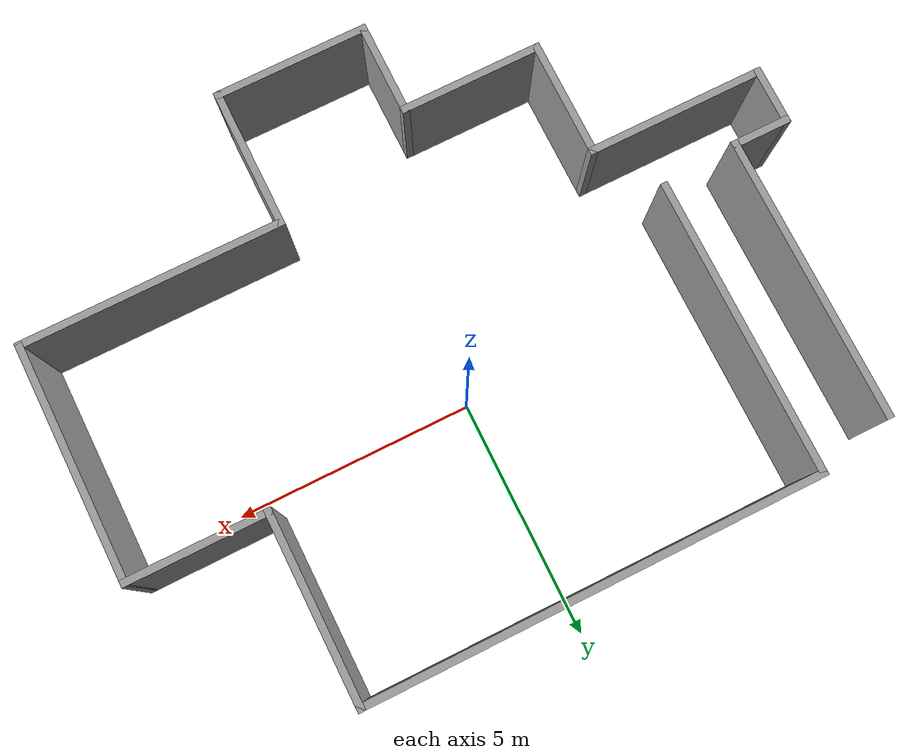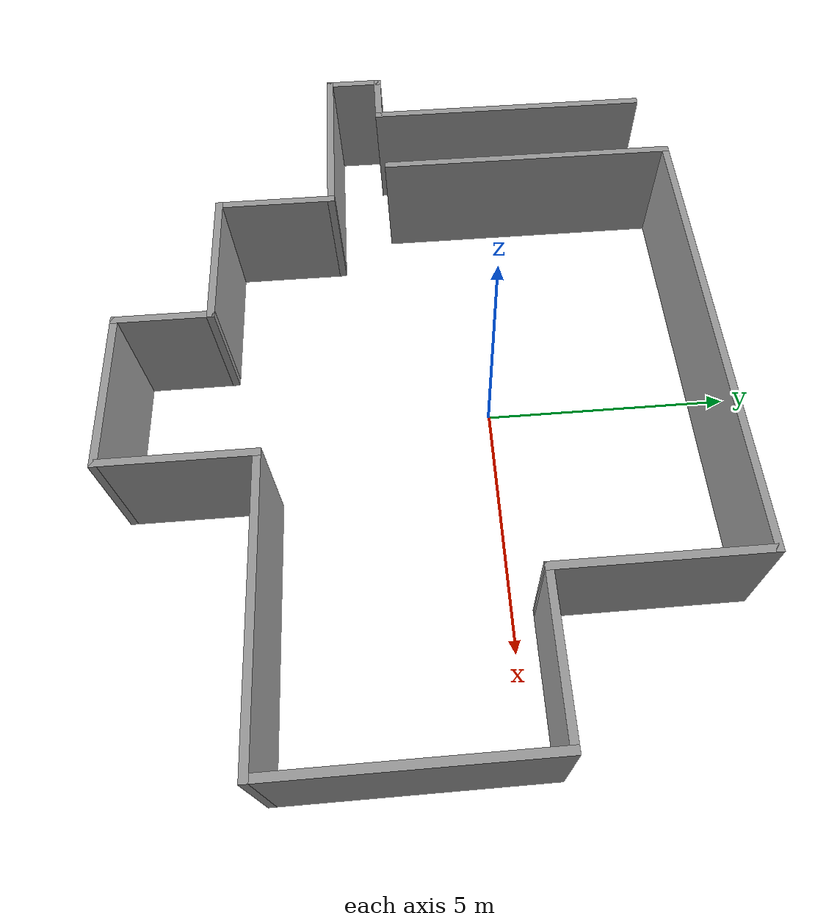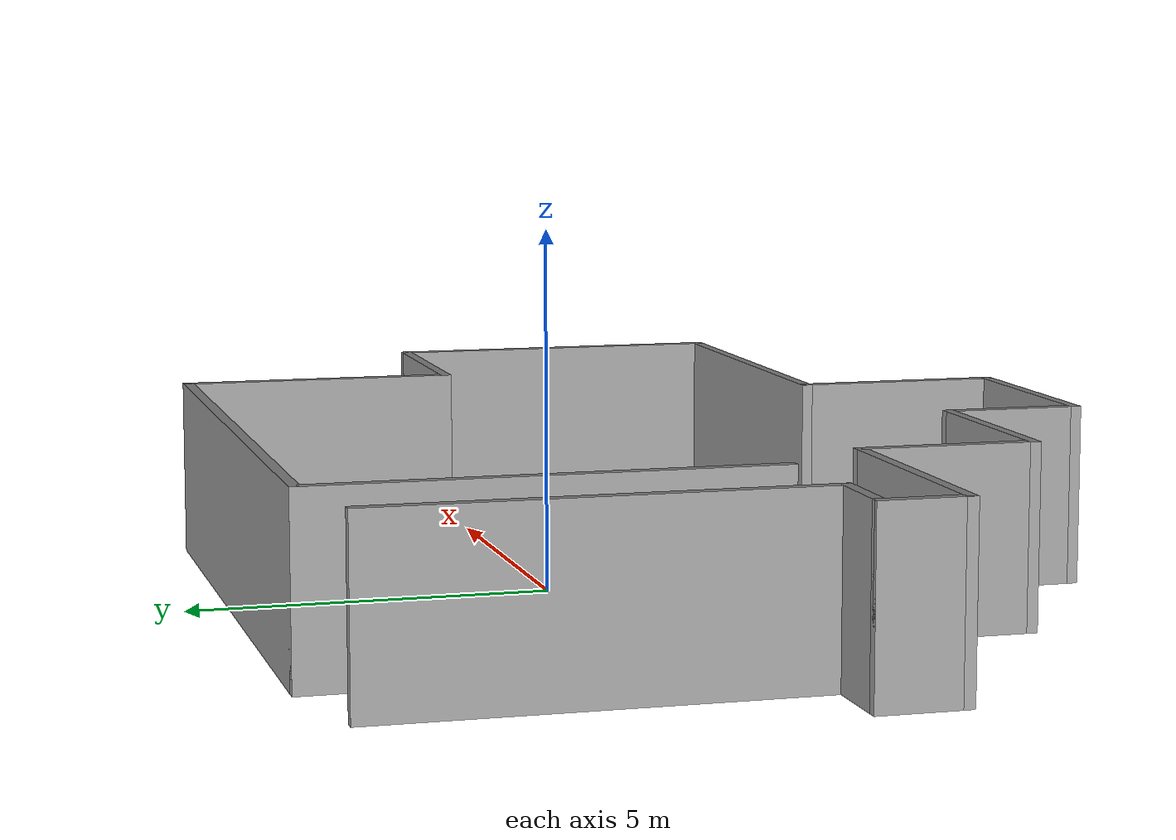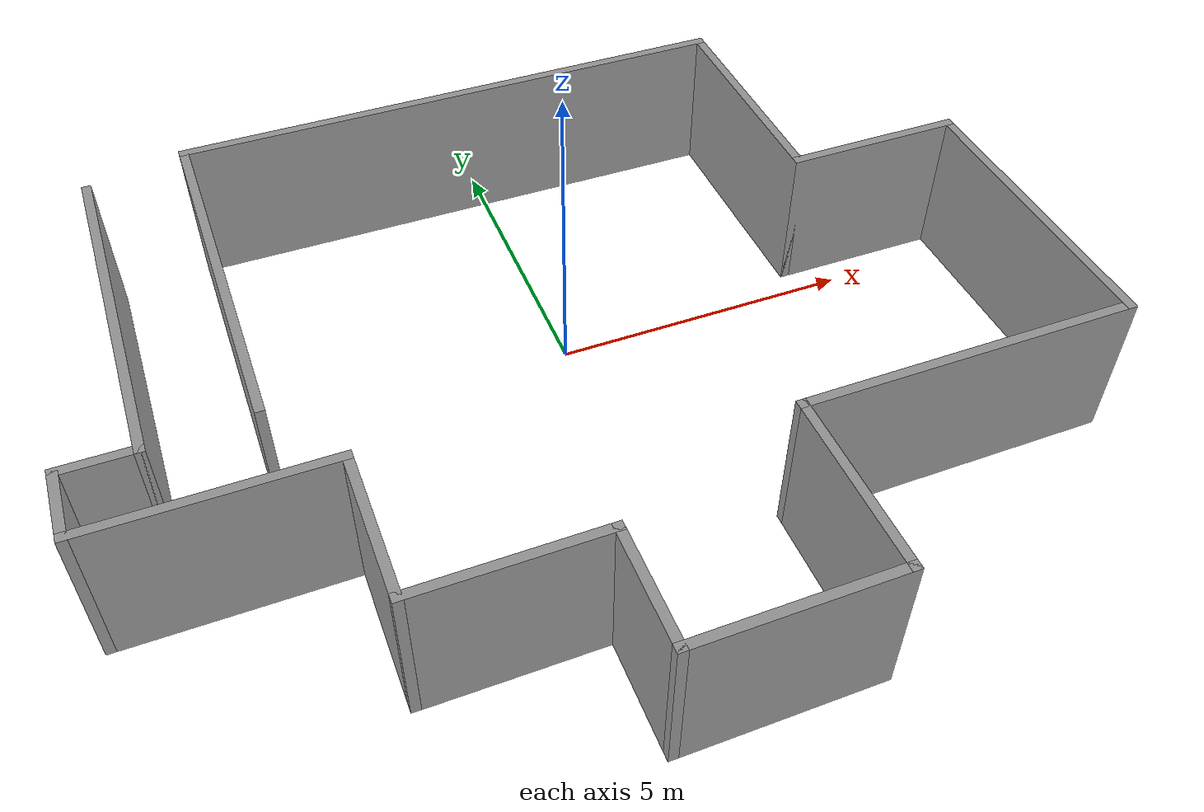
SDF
<?xml version='1.0'?>
<sdf version='1.7'>
  <model name='TestBed'>
    <pose>-0.32139 -1.44159 0 0 -0 0</pose>
    <link name='Wall_1'>
      <collision name='Wall_1_Collision'>
        <geometry>
          <box>
            <size>6.25 0.15 2.5</size>
          </box>
        </geometry>
        <pose>0 0 1.25 0 -0 0</pose>
      </collision>
      <visual name='Wall_1_Visual'>
        <pose>0 0 1.25 0 -0 0</pose>
        <geometry>
          <box>
            <size>6.25 0.15 2.5</size>
          </box>
        </geometry>
        <material>
          <script>
            <uri>file://media/materials/scripts/gazebo.material</uri>
            <name>Gazebo/Grey</name>
          </script>
          <ambient>1 1 1 1</ambient>
        </material>
        <meta>
          <layer>0</layer>
        </meta>
      </visual>
      <pose>-4.75 2.725 0 0 -0 1.5708</pose>
    </link>
    <link name='Wall_10'>
      <collision name='Wall_10_Collision'>
        <geometry>
          <box>
            <size>3 0.15 2.5</size>
          </box>
        </geometry>
        <pose>0 0 1.25 0 -0 0</pose>
      </collision>
      <visual name='Wall_10_Visual'>
        <pose>0 0 1.25 0 -0 0</pose>
        <geometry>
          <box>
            <size>3 0.15 2.5</size>
          </box>
        </geometry>
        <material>
          <script>
            <uri>file://media/materials/scripts/gazebo.material</uri>
            <name>Gazebo/Grey</name>
          </script>
          <ambient>1 1 1 1</ambient>
        </material>
        <meta>
          <layer>0</layer>
        </meta>
      </visual>
      <pose>-2.425 -3.925 0 0 -0 3.14159</pose>
    </link>
    <link name='Wall_11'>
      <collision name='Wall_11_Collision'>
        <geometry>
          <box>
            <size>2.5 0.15 2.5</size>
          </box>
        </geometry>
        <pose>0 0 1.25 0 -0 0</pose>
      </collision>
      <visual name='Wall_11_Visual'>
        <pose>0 0 1.25 0 -0 0</pose>
        <geometry>
          <box>
            <size>2.5 0.15 2.5</size>
          </box>
        </geometry>
        <material>
          <script>
            <uri>file://media/materials/scripts/gazebo.material</uri>
            <name>Gazebo/Grey</name>
          </script>
          <ambient>1 1 1 1</ambient>
        </material>
        <meta>
          <layer>0</layer>
        </meta>
      </visual>
      <pose>-3.85 -2.75 0 0 -0 1.5708</pose>
    </link>
    <link name='Wall_12'>
      <collision name='Wall_12_Collision'>
        <geometry>
          <box>
            <size>3.75 0.15 2.5</size>
          </box>
        </geometry>
        <pose>0 0 1.25 0 -0 0</pose>
      </collision>
      <visual name='Wall_12_Visual'>
        <pose>0 0 1.25 0 -0 0</pose>
        <geometry>
          <box>
            <size>3.75 0.15 2.5</size>
          </box>
        </geometry>
        <material>
          <script>
            <uri>file://media/materials/scripts/gazebo.material</uri>
            <name>Gazebo/Grey</name>
          </script>
          <ambient>1 1 1 1</ambient>
        </material>
        <meta>
          <layer>0</layer>
        </meta>
      </visual>
      <pose>-5.65 -1.575 0 0 -0 3.14159</pose>
    </link>
    <link name='Wall_13'>
      <collision name='Wall_13_Collision'>
        <geometry>
          <box>
            <size>1.25 0.15 2.5</size>
          </box>
        </geometry>
        <pose>0 0 1.25 0 -0 0</pose>
      </collision>
      <visual name='Wall_13_Visual'>
        <pose>0 0 1.25 0 -0 0</pose>
        <geometry>
          <box>
            <size>1.25 0.15 2.5</size>
          </box>
        </geometry>
        <material>
          <script>
            <uri>file://media/materials/scripts/gazebo.material</uri>
            <name>Gazebo/Grey</name>
          </script>
          <ambient>1 1 1 1</ambient>
        </material>
        <meta>
          <layer>0</layer>
        </meta>
      </visual>
      <pose>-7.45 -1.025 0 0 -0 1.5708</pose>
    </link>
    <link name='Wall_14'>
      <collision name='Wall_14_Collision'>
        <geometry>
          <box>
            <size>1.25 0.15 2.5</size>
          </box>
        </geometry>
        <pose>0 0 1.25 0 -0 0</pose>
      </collision>
      <visual name='Wall_14_Visual'>
        <pose>0 0 1.25 0 -0 0</pose>
        <geometry>
          <box>
            <size>1.25 0.15 2.5</size>
          </box>
        </geometry>
        <material>
          <script>
            <uri>file://media/materials/scripts/gazebo.material</uri>
            <name>Gazebo/Grey</name>
          </script>
          <ambient>1 1 1 1</ambient>
        </material>
        <meta>
          <layer>0</layer>
        </meta>
      </visual>
      <pose>-6.9 -0.475 0 0 -0 0</pose>
    </link>
    <link name='Wall_15'>
      <collision name='Wall_15_Collision'>
        <geometry>
          <box>
            <size>6 0.15 2.5</size>
          </box>
        </geometry>
        <pose>0 0 1.25 0 -0 0</pose>
      </collision>
      <visual name='Wall_15_Visual'>
        <pose>0 0 1.25 0 -0 0</pose>
        <geometry>
          <box>
            <size>6 0.15 2.5</size>
          </box>
        </geometry>
        <material>
          <script>
            <uri>file://media/materials/scripts/gazebo.material</uri>
            <name>Gazebo/Grey</name>
          </script>
          <ambient>1 1 1 1</ambient>
        </material>
        <meta>
          <layer>0</layer>
        </meta>
      </visual>
      <pose>-6.35 2.45 0 0 -0 1.5708</pose>
    </link>
    <link name='Wall_2'>
      <collision name='Wall_2_Collision'>
        <geometry>
          <box>
            <size>9.5 0.15 2.5</size>
          </box>
        </geometry>
        <pose>0 0 1.25 0 -0 0</pose>
      </collision>
      <visual name='Wall_2_Visual'>
        <pose>0 0 1.25 0 -0 0</pose>
        <geometry>
          <box>
            <size>9.5 0.15 2.5</size>
          </box>
        </geometry>
        <material>
          <script>
            <uri>file://media/materials/scripts/gazebo.material</uri>
            <name>Gazebo/Grey</name>
          </script>
          <ambient>1 1 1 1</ambient>
        </material>
        <meta>
          <layer>0</layer>
        </meta>
      </visual>
      <pose>-0.075 5.775 0 0 -0 0</pose>
    </link>
    <link name='Wall_3'>
      <collision name='Wall_3_Collision'>
        <geometry>
          <box>
            <size>4 0.15 2.5</size>
          </box>
        </geometry>
        <pose>0 0 1.25 0 -0 0</pose>
      </collision>
      <visual name='Wall_3_Visual'>
        <pose>0 0 1.25 0 -0 0</pose>
        <geometry>
          <box>
            <size>4 0.15 2.5</size>
          </box>
        </geometry>
        <material>
          <script>
            <uri>file://media/materials/scripts/gazebo.material</uri>
            <name>Gazebo/Grey</name>
          </script>
          <ambient>1 1 1 1</ambient>
        </material>
        <meta>
          <layer>0</layer>
        </meta>
      </visual>
      <pose>4.6 3.85 0 0 -0 -1.5708</pose>
    </link>
    <link name='Wall_4'>
      <collision name='Wall_4_Collision'>
        <geometry>
          <box>
            <size>3 0.15 2.5</size>
          </box>
        </geometry>
        <pose>0 0 1.25 0 -0 0</pose>
      </collision>
      <visual name='Wall_4_Visual'>
        <pose>0 0 1.25 0 -0 0</pose>
        <geometry>
          <box>
            <size>3 0.15 2.5</size>
          </box>
        </geometry>
        <material>
          <script>
            <uri>file://media/materials/scripts/gazebo.material</uri>
            <name>Gazebo/Grey</name>
          </script>
          <ambient>1 1 1 1</ambient>
        </material>
        <meta>
          <layer>0</layer>
        </meta>
      </visual>
      <pose>6.025 1.925 0 0 -0 0</pose>
    </link>
    <link name='Wall_5'>
      <collision name='Wall_5_Collision'>
        <geometry>
          <box>
            <size>5 0.15 2.5</size>
          </box>
        </geometry>
        <pose>0 0 1.25 0 -0 0</pose>
      </collision>
      <visual name='Wall_5_Visual'>
        <pose>0 0 1.25 0 -0 0</pose>
        <geometry>
          <box>
            <size>5 0.15 2.5</size>
          </box>
        </geometry>
        <material>
          <script>
            <uri>file://media/materials/scripts/gazebo.material</uri>
            <name>Gazebo/Grey</name>
          </script>
          <ambient>1 1 1 1</ambient>
        </material>
        <meta>
          <layer>0</layer>
        </meta>
      </visual>
      <pose>7.45 -0.5 0 0 -0 -1.5708</pose>
    </link>
    <link name='Wall_6'>
      <collision name='Wall_6_Collision'>
        <geometry>
          <box>
            <size>5.5 0.15 2.5</size>
          </box>
        </geometry>
        <pose>0 0 1.25 0 -0 0</pose>
      </collision>
      <visual name='Wall_6_Visual'>
        <pose>0 0 1.25 0 -0 0</pose>
        <geometry>
          <box>
            <size>5.5 0.15 2.5</size>
          </box>
        </geometry>
        <material>
          <script>
            <uri>file://media/materials/scripts/gazebo.material</uri>
            <name>Gazebo/Grey</name>
          </script>
          <ambient>1 1 1 1</ambient>
        </material>
        <meta>
          <layer>0</layer>
        </meta>
      </visual>
      <pose>4.775 -2.925 0 0 -0 3.14159</pose>
    </link>
    <link name='Wall_7'>
      <collision name='Wall_7_Collision'>
        <geometry>
          <box>
            <size>3 0.15 2.5</size>
          </box>
        </geometry>
        <pose>0 0 1.25 0 -0 0</pose>
      </collision>
      <visual name='Wall_7_Visual'>
        <pose>0 0 1.25 0 -0 0</pose>
        <geometry>
          <box>
            <size>3 0.15 2.5</size>
          </box>
        </geometry>
        <material>
          <script>
            <uri>file://media/materials/scripts/gazebo.material</uri>
            <name>Gazebo/Grey</name>
          </script>
          <ambient>1 1 1 1</ambient>
        </material>
        <meta>
          <layer>0</layer>
        </meta>
      </visual>
      <pose>2.1 -4.35 0 0 -0 -1.5708</pose>
    </link>
    <link name='Wall_8'>
      <collision name='Wall_8_Collision'>
        <geometry>
          <box>
            <size>3.25 0.15 2.5</size>
          </box>
        </geometry>
        <pose>0 0 1.25 0 -0 0</pose>
      </collision>
      <visual name='Wall_8_Visual'>
        <pose>0 0 1.25 0 -0 0</pose>
        <geometry>
          <box>
            <size>3.25 0.15 2.5</size>
          </box>
        </geometry>
        <material>
          <script>
            <uri>file://media/materials/scripts/gazebo.material</uri>
            <name>Gazebo/Grey</name>
          </script>
          <ambient>1 1 1 1</ambient>
        </material>
        <meta>
          <layer>0</layer>
        </meta>
      </visual>
      <pose>0.55 -5.775 0 0 -0 3.14159</pose>
    </link>
    <link name='Wall_9'>
      <collision name='Wall_9_Collision'>
        <geometry>
          <box>
            <size>2 0.15 2.5</size>
          </box>
        </geometry>
        <pose>0 0 1.25 0 -0 0</pose>
      </collision>
      <visual name='Wall_9_Visual'>
        <pose>0 0 1.25 0 -0 0</pose>
        <geometry>
          <box>
            <size>2 0.15 2.5</size>
          </box>
        </geometry>
        <material>
          <script>
            <uri>file://media/materials/scripts/gazebo.material</uri>
            <name>Gazebo/Grey</name>
          </script>
          <ambient>1 1 1 1</ambient>
        </material>
        <meta>
          <layer>0</layer>
        </meta>
      </visual>
      <pose>-1 -4.85 0 0 -0 1.5708</pose>
    </link>
    <static>1</static>
  </model>
</sdf>
